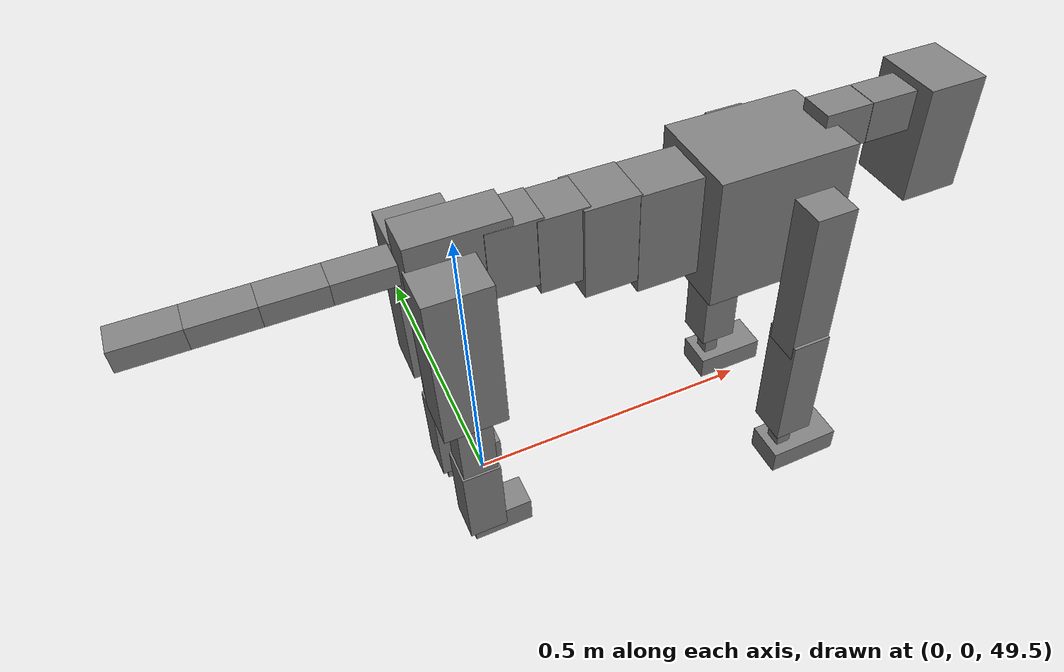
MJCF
<mujoco model="dog">

    <default>
        <joint armature="0.02" stiffness="1" damping="0.2" limited="true"/>
        <geom condim="3" friction="1 0.05 0.05" margin="0.01"/>
        <motor ctrllimited="true" ctrlrange="-1.0 1.0" forcelimited="true" gear="50"/>
    </default>

    <compiler inertiafromgeom="true" angle="radian"/>

    <option timestep="0.016" iterations="50" tolerance="1e-10" solver="Newton" jacobian="dense" cone="pyramidal"/>

    <size nconmax="20000" njmax="60000" nstack="5000000"/>
    <visual>
        <map force="0.1" zfar="30"/>
        <rgba haze="0.15 0.25 0.35 1"/>
        <quality shadowsize="2048"/>
        <global offwidth="800" offheight="800"/>
    </visual>

    <asset>
        <texture type="skybox" builtin="gradient" rgb1="0.3 0.5 0.7" rgb2="0 0 0" width="512" height="512"/>
        <texture name="texplane" type="2d" builtin="checker" rgb1=".2 .3 .4" rgb2=".1 0.15 0.2" width="512" height="512"
                 mark="cross" markrgb=".8 .8 .8"/>
        <texture name="texgeom" type="cube" builtin="flat" mark="cross" width="127" height="1278" rgb1="0.8 0.6 0.4"
                 rgb2="0.8 0.6 0.4" markrgb="1 1 1" random="0.01"/>

        <material name="matplane" reflectance="0.3" texture="texplane" texrepeat="1 1" texuniform="true"/>
        <material name="matgeom" texture="texgeom" texuniform="true" rgba="0.8 0.6 .4 1"/>
    </asset>

    <worldbody>
        <geom name="floor" pos="0 0 0" size="0 0 .25" type="plane" material="matplane" condim="3"/>

        <light directional="false" diffuse=".2 .2 .2" specular="0 0 0" pos="0 0 5" dir="0 0 -1" castshadow="false"/>
        <light mode="targetbodycom" target="torso" directional="false" diffuse=".8 .8 .8" specular="0.3 0.3 0.3"
               pos="0 0 4.0" dir="0 0 -1"/>

        <body name="root" pos="0 0 50">
            <freejoint name="root_1"/>
            <geom type="box" pos="0 0 -0.02" size="0.0774  0.0358  0.063" density="2030"/>

            <body name="spine1" pos="0.054 0 0">
                <joint name="spine1_y" axis="0 1 0" range="0 0.7" limited="true"/>
                <geom type="box" pos="0.02375 0 -0.03" size="0.04375  0.0375  0.05985" density="2030"/>

                <body name="spine2" pos="0.0612 0 0">
                    <joint name="spine2_y" axis="0 1 0" range="-0.15 0.15" limited="true"/>
                    <geom type="box" pos="0.03555  0  -0.04" size="0.04055  0.039  0.06615" density="2030"/>

                    <body name="spine3" pos="0.0730 0 0">
                        <joint name="spine3_y" axis="0 1 0" range="-0.15 0.15" limited="true"/>
                        <geom type="box" pos="0.03555  0  -0.057" size="0.04555  0.0445  0.081" density="2030"/>

                        <body name="spine4" pos="0.0780 0 0">
                            <joint name="spine4_y" axis="0 1 0" range="-0.15 0.15" limited="true"/>
                            <geom type="box" pos="0.05265  0  -0.07" size="0.05265  0.045  0.09135" density="2030"/>

                            <body name="torso" pos="0.1082 0 0">
                                <joint name="torso_y" axis="0 1 0" range="-0.15 0.15" limited="true"/>
                                <geom type="box" pos="0.11925  0  -0.085" size="0.11925  0.085  0.11745"
                                      density="2030"/>

                                <body name="neck1" pos="0.2160  0   0.0180">
                                    <joint name="neck1_y" axis="0 1 0" range="-1.2  -1" limited="true"/>
                                    <geom type="box" pos="0.0423  0  0" size="0.0423  0.03  0.036" density="2325"/>

                                    <body name="neck2" pos="0.0853  0  0">
                                        <joint name="neck2_y" axis="0 1 0" range="0.1  0" limited="true"/>
                                        <geom type="box" pos="0.0423  0  0" size="0.0423  0.03  0.036" density="2325"/>

                                        <body name="head" pos="0.0853  0  0">
                                            <joint name="head_y" axis="0 1 0" range="-0.3  -0.2" limited="true"/>
                                            <geom type="box" pos="0.0531  0  -0.055" size="0.0531  0.06  0.1044"
                                                  density="4030"/>

                                        </body>
                                    </body>
                                </body>

                                <body name="front_shoulder" pos="0.156  0   -0.0480">
                                    <joint name="front_shoulder_y" axis="0 1 0" range="-1 1.5" limited="true"/>
                                    <geom type="box" pos="0 0.13 -0.1183" size="0.0351  0.0300  0.1450" density="1158"/>
                                    <geom type="box" pos="0 -0.13 -0.1183" size="0.0351  0.0300  0.1450"
                                          density="1158"/>

                                    <body name="front_elbow" pos="0  0  -0.2366">
                                        <joint name="front_elbow_y" axis="0 1 0" range="-2 0" limited="true"/>
                                        <geom type="box" pos="0 0.13 -0.1147" size="0.0342  0.0350  0.1147"
                                              density="1081"/>
                                        <geom type="box" pos="0 -0.13 -0.1147" size="0.0342  0.0350  0.1147"
                                              density="1081"/>

                                        <body name="front_wrist" pos="0  0  -0.2293">
                                            <joint name="front_wrist_y" axis="0 1 0" range="-0.2 0" limited="true"/>
                                            <geom type="box" pos="0 0.13 -0.0337" size="0.0135  0.0150  0.0469"
                                                  density="1664"/>
                                            <geom type="box" pos="0 -0.13 -0.0337" size="0.0135  0.0150  0.0469"
                                                  density="1664"/>

                                            <body name="front_finger_end" pos="0  0  -0.0674">
                                                <joint name="front_finger_y" axis="0 1 0" range="-0.4 1"
                                                       limited="true"/>
                                                <geom type="box" pos="0.0357  0.13  -0.0076"
                                                      size="0.0654  0.0357  0.0226" density="1515"/>
                                                <geom type="box" pos="0.0357  -0.13  -0.0076"
                                                      size="0.0654  0.0357  0.0226" density="1515"/>

                                            </body>

                                        </body>
                                    </body>
                                </body>

                            </body>
                        </body>
                    </body>
                </body>
            </body>

            <body name="back_hip" pos="-0.03 0 -0.018">
                <joint name="back_hip_y" axis="0 1 0" range="-1.5 0.3" limited="true"/>
                <geom type="box" pos="0 0.07 -0.1129" size="0.0507  0.0398  0.1357" density="1154"/>
                <geom type="box" pos="0 -0.07 -0.1129" size="0.0507  0.0398  0.1357" density="1154"/>

                <body name="back_knee" pos="0  0  -0.2259">
                    <joint name="back_knee_y" axis="0 1 0" range="0 2.8" limited="true"/>
                    <geom type="box" pos="0 0.07 -0.0752" size="0.0284  0.0280  0.0908" density="1227"/>
                    <geom type="box" pos="0 -0.07 -0.0752" size="0.0284  0.0280  0.0908" density="1227"/>

                    <body name="back_ankle" pos="0  0  -0.1504">
                        <joint name="back_ankle_y" axis="0 1 0" range="-2.2 0" limited="true"/>
                        <geom type="box" pos="0 0.07 -0.0649" size="0.0318  0.0318  0.0761" density="1284"/>
                        <geom type="box" pos="0 -0.07 -0.0649" size="0.0318  0.0318  0.0761" density="1284"/>

                        <body name="back_toe_end" pos="0  0  -0.1297">
                            <joint name="back_toe_y" axis="0 1 0" range="-0.4 1" limited="true"/>
                            <geom type="box" pos="0.0275  0.07  -0.0083" size="0.0505  0.0275  0.0233" density="1515"/>
                            <geom type="box" pos="0.0275  -0.07  -0.0083" size="0.0505  0.0275  0.0233" density="1515"/>

                        </body>
                    </body>
                </body>
            </body>

            <body name="tail1" pos="-0.074 0 -0.006">
                <joint name="tail1_y" axis="0 1 0" range="-0.2 0.2" limited="true"/>
                <geom type="box" pos="-0.0536  0  0" size="0.045  0.025  0.0175" density="1587"/>

                <body name="tail2" pos="-0.09 0 0">
                    <joint name="tail2_y" axis="0 1 0" range="-0.2 0.2" limited="true"/>
                    <geom type="box" pos="-0.0536  0  0" size="0.045  0.025  0.0175" density="1587"/>

                    <body name="tail3" pos="-0.09 0 0">
                        <joint name="tail3_y" axis="0 1 0" range="-0.2 0.2" limited="true"/>
                        <geom type="box" pos="-0.0536  0  0" size="0.045  0.025  0.0175" density="1587"/>

                        <body name="tail4" pos="-0.09 0 0">
                            <joint name="tail4_y" axis="0 1 0" range="-0.2 0.2" limited="true"/>
                            <geom type="box" pos="-0.0536  0  0" size="0.045  0.025  0.0175" density="1587"/>

                        </body>
                    </body>
                </body>
            </body>
        </body>
    </worldbody>

    <actuator>
        <motor joint="spine1_y" forcerange="-150 150     "/>
        <motor joint="spine2_y" forcerange="-150 150     "/>
        <motor joint="spine3_y" forcerange="-150 150     "/>
        <motor joint="spine4_y" forcerange="-150 150     "/>
        <motor joint="torso_y" forcerange="-150 150     "/>
        <motor joint="neck1_y" forcerange="-100 100       "/>
        <motor joint="neck2_y" forcerange="-100 100       "/>
        <motor joint="head_y" forcerange="-150 150       "/>
        <motor joint="front_shoulder_y" forcerange="-118.19 181.73"/>
        <motor joint="front_elbow_y" forcerange="-159.38 194.97"/>
        <motor joint="front_wrist_y" forcerange="-61.88 57.82"/>
        <motor joint="front_finger_y" forcerange="-75.26 74.96"/>
        <motor joint="back_hip_y" forcerange="-362.49 367.53"/>
        <motor joint="back_knee_y" forcerange="-215.89 390.92"/>
        <motor joint="back_angle_y" forcerange="-184.02 225.53"/>
        <motor joint="back_toe_y" forcerange="-48.54 91.80"/>
        <motor joint="tail1_y" forcerange="-50 50     "/>
        <motor joint="tail2_y" forcerange="-50 50     "/>
        <motor joint="tail3_y" forcerange="-50 50     "/>
        <motor joint="tail4_y" forcerange="-50 50     "/>
    </actuator>
</mujoco>
